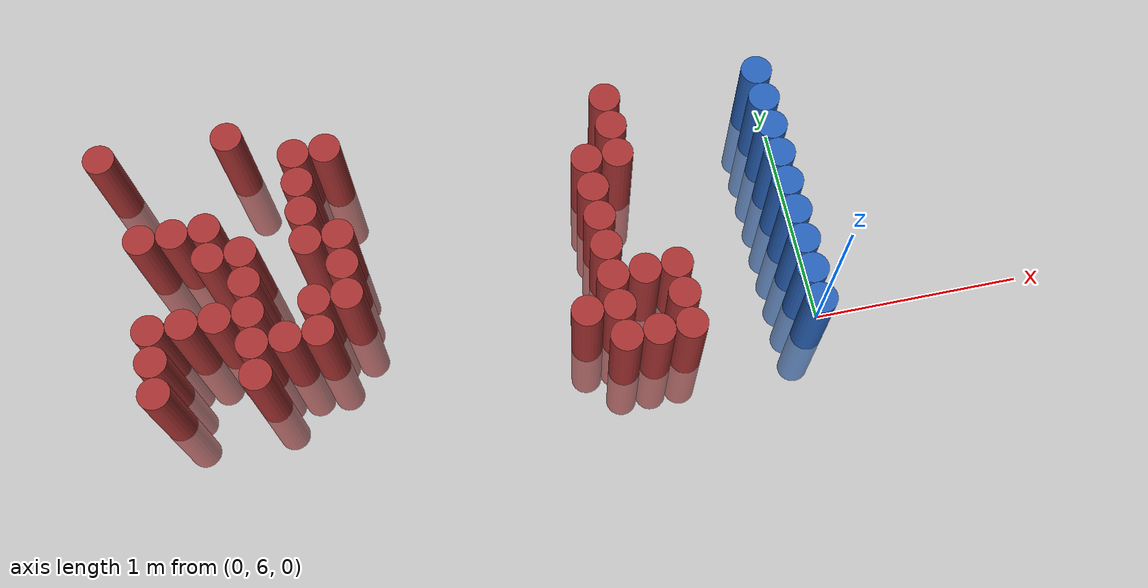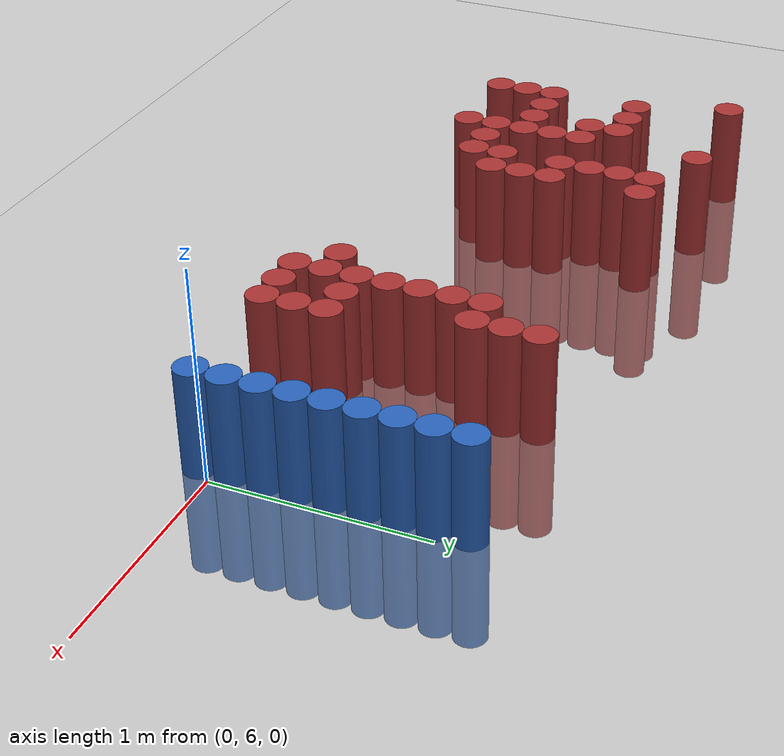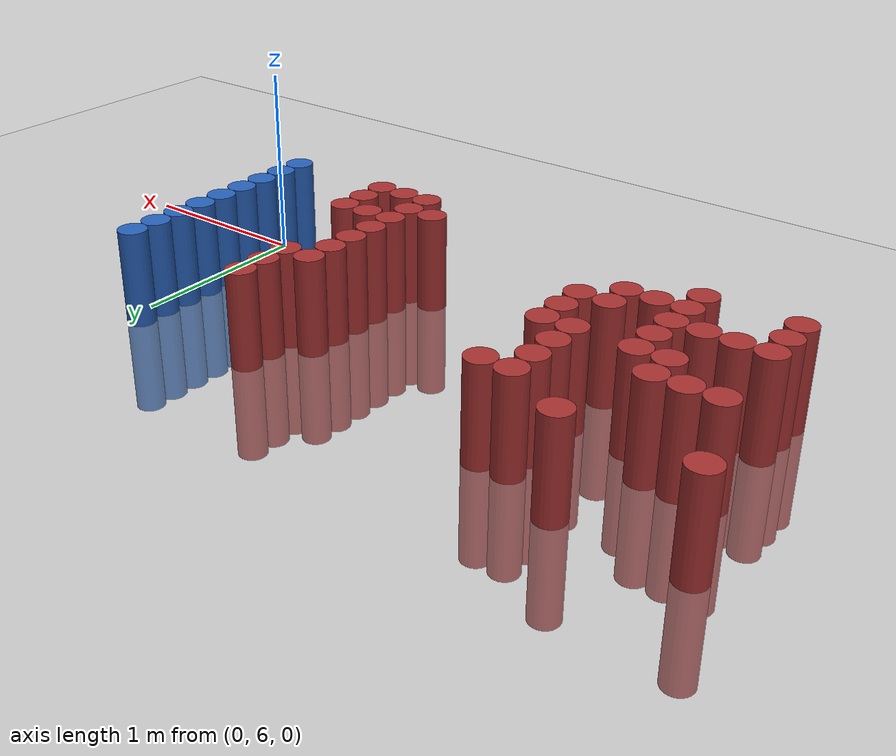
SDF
<sdf version="1.6">
 <world name="default">
  <model name="ground_plane">
   <static>1</static>
   <link name="link">
    <collision name="collision">
     <geometry><plane><normal>0 0 1</normal><size>100 100</size></plane></geometry>
     <surface><friction><ode><mu>100</mu><mu2>50</mu2></ode></friction></surface>
    </collision>
    <visual name="visual">
     <cast_shadows>0</cast_shadows>
     <geometry><plane><normal>0 0 1</normal><size>100 100</size></plane></geometry>
     <material>
      <script><uri>file://media/materials/scripts/gazebo.material</uri><name>Gazebo/Grey</name></script>
     </material>
    </visual>
   </link>
  </model>
  <model name="unit_cylinder_169">
   <static>1</static>
   <pose>-3.225000 7.275000 0.000000 0.000000 0.000000 0.000000</pose>
   <link name="link">
    <inertial>
     <mass>1</mass>
     <inertia><ixx>0.145833</ixx><ixy>0</ixy><ixz>0</ixz><iyy>0.145833</iyy><iyz>0</iyz><izz>0.125</izz></inertia>
    </inertial>
    <collision name="collision">
     <geometry><cylinder><radius>0.075000</radius><length>1</length></cylinder></geometry>
    </collision>
    <visual name="visual">
     <geometry><cylinder><radius>0.075000</radius><length>1</length></cylinder></geometry>
     <material>
      <ambient>0.648000 0.192000 0.192000 1</ambient>
      <diffuse>0.648000 0.192000 0.192000 1</diffuse>
     </material>
     <material>
      <script><name>Gazebo/Grey</name><uri>file://media/materials/scripts/gazebo.material</uri></script>
     </material>
    </visual>
   </link>
  </model>
  <model name="unit_cylinder_174">
   <static>1</static>
   <pose>-3.075000 6.075000 0.000000 0.000000 0.000000 0.000000</pose>
   <link name="link">
    <inertial>
     <mass>1</mass>
     <inertia><ixx>0.145833</ixx><ixy>0</ixy><ixz>0</ixz><iyy>0.145833</iyy><iyz>0</iyz><izz>0.125</izz></inertia>
    </inertial>
    <collision name="collision">
     <geometry><cylinder><radius>0.075000</radius><length>1</length></cylinder></geometry>
    </collision>
    <visual name="visual">
     <geometry><cylinder><radius>0.075000</radius><length>1</length></cylinder></geometry>
     <material>
      <ambient>0.648000 0.192000 0.192000 1</ambient>
      <diffuse>0.648000 0.192000 0.192000 1</diffuse>
     </material>
     <material>
      <script><name>Gazebo/Grey</name><uri>file://media/materials/scripts/gazebo.material</uri></script>
     </material>
    </visual>
   </link>
  </model>
  <model name="unit_cylinder_175">
   <static>1</static>
   <pose>-3.075000 6.225000 0.000000 0.000000 0.000000 0.000000</pose>
   <link name="link">
    <inertial>
     <mass>1</mass>
     <inertia><ixx>0.145833</ixx><ixy>0</ixy><ixz>0</ixz><iyy>0.145833</iyy><iyz>0</iyz><izz>0.125</izz></inertia>
    </inertial>
    <collision name="collision">
     <geometry><cylinder><radius>0.075000</radius><length>1</length></cylinder></geometry>
    </collision>
    <visual name="visual">
     <geometry><cylinder><radius>0.075000</radius><length>1</length></cylinder></geometry>
     <material>
      <ambient>0.648000 0.192000 0.192000 1</ambient>
      <diffuse>0.648000 0.192000 0.192000 1</diffuse>
     </material>
     <material>
      <script><name>Gazebo/Grey</name><uri>file://media/materials/scripts/gazebo.material</uri></script>
     </material>
    </visual>
   </link>
  </model>
  <model name="unit_cylinder_176">
   <static>1</static>
   <pose>-3.075000 6.375000 0.000000 0.000000 0.000000 0.000000</pose>
   <link name="link">
    <inertial>
     <mass>1</mass>
     <inertia><ixx>0.145833</ixx><ixy>0</ixy><ixz>0</ixz><iyy>0.145833</iyy><iyz>0</iyz><izz>0.125</izz></inertia>
    </inertial>
    <collision name="collision">
     <geometry><cylinder><radius>0.075000</radius><length>1</length></cylinder></geometry>
    </collision>
    <visual name="visual">
     <geometry><cylinder><radius>0.075000</radius><length>1</length></cylinder></geometry>
     <material>
      <ambient>0.648000 0.192000 0.192000 1</ambient>
      <diffuse>0.648000 0.192000 0.192000 1</diffuse>
     </material>
     <material>
      <script><name>Gazebo/Grey</name><uri>file://media/materials/scripts/gazebo.material</uri></script>
     </material>
    </visual>
   </link>
  </model>
  <model name="unit_cylinder_177">
   <static>1</static>
   <pose>-3.075000 6.825000 0.000000 0.000000 0.000000 0.000000</pose>
   <link name="link">
    <inertial>
     <mass>1</mass>
     <inertia><ixx>0.145833</ixx><ixy>0</ixy><ixz>0</ixz><iyy>0.145833</iyy><iyz>0</iyz><izz>0.125</izz></inertia>
    </inertial>
    <collision name="collision">
     <geometry><cylinder><radius>0.075000</radius><length>1</length></cylinder></geometry>
    </collision>
    <visual name="visual">
     <geometry><cylinder><radius>0.075000</radius><length>1</length></cylinder></geometry>
     <material>
      <ambient>0.648000 0.192000 0.192000 1</ambient>
      <diffuse>0.648000 0.192000 0.192000 1</diffuse>
     </material>
     <material>
      <script><name>Gazebo/Grey</name><uri>file://media/materials/scripts/gazebo.material</uri></script>
     </material>
    </visual>
   </link>
  </model>
  <model name="unit_cylinder_186">
   <static>1</static>
   <pose>-2.925000 6.375000 0.000000 0.000000 0.000000 0.000000</pose>
   <link name="link">
    <inertial>
     <mass>1</mass>
     <inertia><ixx>0.145833</ixx><ixy>0</ixy><ixz>0</ixz><iyy>0.145833</iyy><iyz>0</iyz><izz>0.125</izz></inertia>
    </inertial>
    <collision name="collision">
     <geometry><cylinder><radius>0.075000</radius><length>1</length></cylinder></geometry>
    </collision>
    <visual name="visual">
     <geometry><cylinder><radius>0.075000</radius><length>1</length></cylinder></geometry>
     <material>
      <ambient>0.648000 0.192000 0.192000 1</ambient>
      <diffuse>0.648000 0.192000 0.192000 1</diffuse>
     </material>
     <material>
      <script><name>Gazebo/Grey</name><uri>file://media/materials/scripts/gazebo.material</uri></script>
     </material>
    </visual>
   </link>
  </model>
  <model name="unit_cylinder_187">
   <static>1</static>
   <pose>-2.925000 6.825000 0.000000 0.000000 0.000000 0.000000</pose>
   <link name="link">
    <inertial>
     <mass>1</mass>
     <inertia><ixx>0.145833</ixx><ixy>0</ixy><ixz>0</ixz><iyy>0.145833</iyy><iyz>0</iyz><izz>0.125</izz></inertia>
    </inertial>
    <collision name="collision">
     <geometry><cylinder><radius>0.075000</radius><length>1</length></cylinder></geometry>
    </collision>
    <visual name="visual">
     <geometry><cylinder><radius>0.075000</radius><length>1</length></cylinder></geometry>
     <material>
      <ambient>0.648000 0.192000 0.192000 1</ambient>
      <diffuse>0.648000 0.192000 0.192000 1</diffuse>
     </material>
     <material>
      <script><name>Gazebo/Grey</name><uri>file://media/materials/scripts/gazebo.material</uri></script>
     </material>
    </visual>
   </link>
  </model>
  <model name="unit_cylinder_195">
   <static>1</static>
   <pose>-2.775000 6.375000 0.000000 0.000000 0.000000 0.000000</pose>
   <link name="link">
    <inertial>
     <mass>1</mass>
     <inertia><ixx>0.145833</ixx><ixy>0</ixy><ixz>0</ixz><iyy>0.145833</iyy><iyz>0</iyz><izz>0.125</izz></inertia>
    </inertial>
    <collision name="collision">
     <geometry><cylinder><radius>0.075000</radius><length>1</length></cylinder></geometry>
    </collision>
    <visual name="visual">
     <geometry><cylinder><radius>0.075000</radius><length>1</length></cylinder></geometry>
     <material>
      <ambient>0.648000 0.192000 0.192000 1</ambient>
      <diffuse>0.648000 0.192000 0.192000 1</diffuse>
     </material>
     <material>
      <script><name>Gazebo/Grey</name><uri>file://media/materials/scripts/gazebo.material</uri></script>
     </material>
    </visual>
   </link>
  </model>
  <model name="unit_cylinder_196">
   <static>1</static>
   <pose>-2.775000 6.675000 0.000000 0.000000 0.000000 0.000000</pose>
   <link name="link">
    <inertial>
     <mass>1</mass>
     <inertia><ixx>0.145833</ixx><ixy>0</ixy><ixz>0</ixz><iyy>0.145833</iyy><iyz>0</iyz><izz>0.125</izz></inertia>
    </inertial>
    <collision name="collision">
     <geometry><cylinder><radius>0.075000</radius><length>1</length></cylinder></geometry>
    </collision>
    <visual name="visual">
     <geometry><cylinder><radius>0.075000</radius><length>1</length></cylinder></geometry>
     <material>
      <ambient>0.648000 0.192000 0.192000 1</ambient>
      <diffuse>0.648000 0.192000 0.192000 1</diffuse>
     </material>
     <material>
      <script><name>Gazebo/Grey</name><uri>file://media/materials/scripts/gazebo.material</uri></script>
     </material>
    </visual>
   </link>
  </model>
  <model name="unit_cylinder_197">
   <static>1</static>
   <pose>-2.775000 6.825000 0.000000 0.000000 0.000000 0.000000</pose>
   <link name="link">
    <inertial>
     <mass>1</mass>
     <inertia><ixx>0.145833</ixx><ixy>0</ixy><ixz>0</ixz><iyy>0.145833</iyy><iyz>0</iyz><izz>0.125</izz></inertia>
    </inertial>
    <collision name="collision">
     <geometry><cylinder><radius>0.075000</radius><length>1</length></cylinder></geometry>
    </collision>
    <visual name="visual">
     <geometry><cylinder><radius>0.075000</radius><length>1</length></cylinder></geometry>
     <material>
      <ambient>0.648000 0.192000 0.192000 1</ambient>
      <diffuse>0.648000 0.192000 0.192000 1</diffuse>
     </material>
     <material>
      <script><name>Gazebo/Grey</name><uri>file://media/materials/scripts/gazebo.material</uri></script>
     </material>
    </visual>
   </link>
  </model>
  <model name="unit_cylinder_203">
   <static>1</static>
   <pose>-2.625000 6.075000 0.000000 0.000000 0.000000 0.000000</pose>
   <link name="link">
    <inertial>
     <mass>1</mass>
     <inertia><ixx>0.145833</ixx><ixy>0</ixy><ixz>0</ixz><iyy>0.145833</iyy><iyz>0</iyz><izz>0.125</izz></inertia>
    </inertial>
    <collision name="collision">
     <geometry><cylinder><radius>0.075000</radius><length>1</length></cylinder></geometry>
    </collision>
    <visual name="visual">
     <geometry><cylinder><radius>0.075000</radius><length>1</length></cylinder></geometry>
     <material>
      <ambient>0.648000 0.192000 0.192000 1</ambient>
      <diffuse>0.648000 0.192000 0.192000 1</diffuse>
     </material>
     <material>
      <script><name>Gazebo/Grey</name><uri>file://media/materials/scripts/gazebo.material</uri></script>
     </material>
    </visual>
   </link>
  </model>
  <model name="unit_cylinder_204">
   <static>1</static>
   <pose>-2.625000 6.225000 0.000000 0.000000 0.000000 0.000000</pose>
   <link name="link">
    <inertial>
     <mass>1</mass>
     <inertia><ixx>0.145833</ixx><ixy>0</ixy><ixz>0</ixz><iyy>0.145833</iyy><iyz>0</iyz><izz>0.125</izz></inertia>
    </inertial>
    <collision name="collision">
     <geometry><cylinder><radius>0.075000</radius><length>1</length></cylinder></geometry>
    </collision>
    <visual name="visual">
     <geometry><cylinder><radius>0.075000</radius><length>1</length></cylinder></geometry>
     <material>
      <ambient>0.648000 0.192000 0.192000 1</ambient>
      <diffuse>0.648000 0.192000 0.192000 1</diffuse>
     </material>
     <material>
      <script><name>Gazebo/Grey</name><uri>file://media/materials/scripts/gazebo.material</uri></script>
     </material>
    </visual>
   </link>
  </model>
  <model name="unit_cylinder_205">
   <static>1</static>
   <pose>-2.625000 6.375000 0.000000 0.000000 0.000000 0.000000</pose>
   <link name="link">
    <inertial>
     <mass>1</mass>
     <inertia><ixx>0.145833</ixx><ixy>0</ixy><ixz>0</ixz><iyy>0.145833</iyy><iyz>0</iyz><izz>0.125</izz></inertia>
    </inertial>
    <collision name="collision">
     <geometry><cylinder><radius>0.075000</radius><length>1</length></cylinder></geometry>
    </collision>
    <visual name="visual">
     <geometry><cylinder><radius>0.075000</radius><length>1</length></cylinder></geometry>
     <material>
      <ambient>0.648000 0.192000 0.192000 1</ambient>
      <diffuse>0.648000 0.192000 0.192000 1</diffuse>
     </material>
     <material>
      <script><name>Gazebo/Grey</name><uri>file://media/materials/scripts/gazebo.material</uri></script>
     </material>
    </visual>
   </link>
  </model>
  <model name="unit_cylinder_206">
   <static>1</static>
   <pose>-2.625000 6.525000 0.000000 0.000000 0.000000 0.000000</pose>
   <link name="link">
    <inertial>
     <mass>1</mass>
     <inertia><ixx>0.145833</ixx><ixy>0</ixy><ixz>0</ixz><iyy>0.145833</iyy><iyz>0</iyz><izz>0.125</izz></inertia>
    </inertial>
    <collision name="collision">
     <geometry><cylinder><radius>0.075000</radius><length>1</length></cylinder></geometry>
    </collision>
    <visual name="visual">
     <geometry><cylinder><radius>0.075000</radius><length>1</length></cylinder></geometry>
     <material>
      <ambient>0.648000 0.192000 0.192000 1</ambient>
      <diffuse>0.648000 0.192000 0.192000 1</diffuse>
     </material>
     <material>
      <script><name>Gazebo/Grey</name><uri>file://media/materials/scripts/gazebo.material</uri></script>
     </material>
    </visual>
   </link>
  </model>
  <model name="unit_cylinder_207">
   <static>1</static>
   <pose>-2.625000 6.675000 0.000000 0.000000 0.000000 0.000000</pose>
   <link name="link">
    <inertial>
     <mass>1</mass>
     <inertia><ixx>0.145833</ixx><ixy>0</ixy><ixz>0</ixz><iyy>0.145833</iyy><iyz>0</iyz><izz>0.125</izz></inertia>
    </inertial>
    <collision name="collision">
     <geometry><cylinder><radius>0.075000</radius><length>1</length></cylinder></geometry>
    </collision>
    <visual name="visual">
     <geometry><cylinder><radius>0.075000</radius><length>1</length></cylinder></geometry>
     <material>
      <ambient>0.648000 0.192000 0.192000 1</ambient>
      <diffuse>0.648000 0.192000 0.192000 1</diffuse>
     </material>
     <material>
      <script><name>Gazebo/Grey</name><uri>file://media/materials/scripts/gazebo.material</uri></script>
     </material>
    </visual>
   </link>
  </model>
  <model name="unit_cylinder_208">
   <static>1</static>
   <pose>-2.625000 7.275000 0.000000 0.000000 0.000000 0.000000</pose>
   <link name="link">
    <inertial>
     <mass>1</mass>
     <inertia><ixx>0.145833</ixx><ixy>0</ixy><ixz>0</ixz><iyy>0.145833</iyy><iyz>0</iyz><izz>0.125</izz></inertia>
    </inertial>
    <collision name="collision">
     <geometry><cylinder><radius>0.075000</radius><length>1</length></cylinder></geometry>
    </collision>
    <visual name="visual">
     <geometry><cylinder><radius>0.075000</radius><length>1</length></cylinder></geometry>
     <material>
      <ambient>0.648000 0.192000 0.192000 1</ambient>
      <diffuse>0.648000 0.192000 0.192000 1</diffuse>
     </material>
     <material>
      <script><name>Gazebo/Grey</name><uri>file://media/materials/scripts/gazebo.material</uri></script>
     </material>
    </visual>
   </link>
  </model>
  <model name="unit_cylinder_216">
   <static>1</static>
   <pose>-2.475000 6.225000 0.000000 0.000000 0.000000 0.000000</pose>
   <link name="link">
    <inertial>
     <mass>1</mass>
     <inertia><ixx>0.145833</ixx><ixy>0</ixy><ixz>0</ixz><iyy>0.145833</iyy><iyz>0</iyz><izz>0.125</izz></inertia>
    </inertial>
    <collision name="collision">
     <geometry><cylinder><radius>0.075000</radius><length>1</length></cylinder></geometry>
    </collision>
    <visual name="visual">
     <geometry><cylinder><radius>0.075000</radius><length>1</length></cylinder></geometry>
     <material>
      <ambient>0.648000 0.192000 0.192000 1</ambient>
      <diffuse>0.648000 0.192000 0.192000 1</diffuse>
     </material>
     <material>
      <script><name>Gazebo/Grey</name><uri>file://media/materials/scripts/gazebo.material</uri></script>
     </material>
    </visual>
   </link>
  </model>
  <model name="unit_cylinder_221">
   <static>1</static>
   <pose>-2.325000 6.225000 0.000000 0.000000 0.000000 0.000000</pose>
   <link name="link">
    <inertial>
     <mass>1</mass>
     <inertia><ixx>0.145833</ixx><ixy>0</ixy><ixz>0</ixz><iyy>0.145833</iyy><iyz>0</iyz><izz>0.125</izz></inertia>
    </inertial>
    <collision name="collision">
     <geometry><cylinder><radius>0.075000</radius><length>1</length></cylinder></geometry>
    </collision>
    <visual name="visual">
     <geometry><cylinder><radius>0.075000</radius><length>1</length></cylinder></geometry>
     <material>
      <ambient>0.648000 0.192000 0.192000 1</ambient>
      <diffuse>0.648000 0.192000 0.192000 1</diffuse>
     </material>
     <material>
      <script><name>Gazebo/Grey</name><uri>file://media/materials/scripts/gazebo.material</uri></script>
     </material>
    </visual>
   </link>
  </model>
  <model name="unit_cylinder_222">
   <static>1</static>
   <pose>-2.325000 6.375000 0.000000 0.000000 0.000000 0.000000</pose>
   <link name="link">
    <inertial>
     <mass>1</mass>
     <inertia><ixx>0.145833</ixx><ixy>0</ixy><ixz>0</ixz><iyy>0.145833</iyy><iyz>0</iyz><izz>0.125</izz></inertia>
    </inertial>
    <collision name="collision">
     <geometry><cylinder><radius>0.075000</radius><length>1</length></cylinder></geometry>
    </collision>
    <visual name="visual">
     <geometry><cylinder><radius>0.075000</radius><length>1</length></cylinder></geometry>
     <material>
      <ambient>0.648000 0.192000 0.192000 1</ambient>
      <diffuse>0.648000 0.192000 0.192000 1</diffuse>
     </material>
     <material>
      <script><name>Gazebo/Grey</name><uri>file://media/materials/scripts/gazebo.material</uri></script>
     </material>
    </visual>
   </link>
  </model>
  <model name="unit_cylinder_223">
   <static>1</static>
   <pose>-2.325000 6.675000 0.000000 0.000000 0.000000 0.000000</pose>
   <link name="link">
    <inertial>
     <mass>1</mass>
     <inertia><ixx>0.145833</ixx><ixy>0</ixy><ixz>0</ixz><iyy>0.145833</iyy><iyz>0</iyz><izz>0.125</izz></inertia>
    </inertial>
    <collision name="collision">
     <geometry><cylinder><radius>0.075000</radius><length>1</length></cylinder></geometry>
    </collision>
    <visual name="visual">
     <geometry><cylinder><radius>0.075000</radius><length>1</length></cylinder></geometry>
     <material>
      <ambient>0.648000 0.192000 0.192000 1</ambient>
      <diffuse>0.648000 0.192000 0.192000 1</diffuse>
     </material>
     <material>
      <script><name>Gazebo/Grey</name><uri>file://media/materials/scripts/gazebo.material</uri></script>
     </material>
    </visual>
   </link>
  </model>
  <model name="unit_cylinder_224">
   <static>1</static>
   <pose>-2.325000 6.825000 0.000000 0.000000 0.000000 0.000000</pose>
   <link name="link">
    <inertial>
     <mass>1</mass>
     <inertia><ixx>0.145833</ixx><ixy>0</ixy><ixz>0</ixz><iyy>0.145833</iyy><iyz>0</iyz><izz>0.125</izz></inertia>
    </inertial>
    <collision name="collision">
     <geometry><cylinder><radius>0.075000</radius><length>1</length></cylinder></geometry>
    </collision>
    <visual name="visual">
     <geometry><cylinder><radius>0.075000</radius><length>1</length></cylinder></geometry>
     <material>
      <ambient>0.648000 0.192000 0.192000 1</ambient>
      <diffuse>0.648000 0.192000 0.192000 1</diffuse>
     </material>
     <material>
      <script><name>Gazebo/Grey</name><uri>file://media/materials/scripts/gazebo.material</uri></script>
     </material>
    </visual>
   </link>
  </model>
  <model name="unit_cylinder_225">
   <static>1</static>
   <pose>-2.325000 6.975000 0.000000 0.000000 0.000000 0.000000</pose>
   <link name="link">
    <inertial>
     <mass>1</mass>
     <inertia><ixx>0.145833</ixx><ixy>0</ixy><ixz>0</ixz><iyy>0.145833</iyy><iyz>0</iyz><izz>0.125</izz></inertia>
    </inertial>
    <collision name="collision">
     <geometry><cylinder><radius>0.075000</radius><length>1</length></cylinder></geometry>
    </collision>
    <visual name="visual">
     <geometry><cylinder><radius>0.075000</radius><length>1</length></cylinder></geometry>
     <material>
      <ambient>0.648000 0.192000 0.192000 1</ambient>
      <diffuse>0.648000 0.192000 0.192000 1</diffuse>
     </material>
     <material>
      <script><name>Gazebo/Grey</name><uri>file://media/materials/scripts/gazebo.material</uri></script>
     </material>
    </visual>
   </link>
  </model>
  <model name="unit_cylinder_226">
   <static>1</static>
   <pose>-2.325000 7.125000 0.000000 0.000000 0.000000 0.000000</pose>
   <link name="link">
    <inertial>
     <mass>1</mass>
     <inertia><ixx>0.145833</ixx><ixy>0</ixy><ixz>0</ixz><iyy>0.145833</iyy><iyz>0</iyz><izz>0.125</izz></inertia>
    </inertial>
    <collision name="collision">
     <geometry><cylinder><radius>0.075000</radius><length>1</length></cylinder></geometry>
    </collision>
    <visual name="visual">
     <geometry><cylinder><radius>0.075000</radius><length>1</length></cylinder></geometry>
     <material>
      <ambient>0.648000 0.192000 0.192000 1</ambient>
      <diffuse>0.648000 0.192000 0.192000 1</diffuse>
     </material>
     <material>
      <script><name>Gazebo/Grey</name><uri>file://media/materials/scripts/gazebo.material</uri></script>
     </material>
    </visual>
   </link>
  </model>
  <model name="unit_cylinder_230">
   <static>1</static>
   <pose>-2.175000 6.375000 0.000000 0.000000 0.000000 0.000000</pose>
   <link name="link">
    <inertial>
     <mass>1</mass>
     <inertia><ixx>0.145833</ixx><ixy>0</ixy><ixz>0</ixz><iyy>0.145833</iyy><iyz>0</iyz><izz>0.125</izz></inertia>
    </inertial>
    <collision name="collision">
     <geometry><cylinder><radius>0.075000</radius><length>1</length></cylinder></geometry>
    </collision>
    <visual name="visual">
     <geometry><cylinder><radius>0.075000</radius><length>1</length></cylinder></geometry>
     <material>
      <ambient>0.648000 0.192000 0.192000 1</ambient>
      <diffuse>0.648000 0.192000 0.192000 1</diffuse>
     </material>
     <material>
      <script><name>Gazebo/Grey</name><uri>file://media/materials/scripts/gazebo.material</uri></script>
     </material>
    </visual>
   </link>
  </model>
  <model name="unit_cylinder_231">
   <static>1</static>
   <pose>-2.175000 6.525000 0.000000 0.000000 0.000000 0.000000</pose>
   <link name="link">
    <inertial>
     <mass>1</mass>
     <inertia><ixx>0.145833</ixx><ixy>0</ixy><ixz>0</ixz><iyy>0.145833</iyy><iyz>0</iyz><izz>0.125</izz></inertia>
    </inertial>
    <collision name="collision">
     <geometry><cylinder><radius>0.075000</radius><length>1</length></cylinder></geometry>
    </collision>
    <visual name="visual">
     <geometry><cylinder><radius>0.075000</radius><length>1</length></cylinder></geometry>
     <material>
      <ambient>0.648000 0.192000 0.192000 1</ambient>
      <diffuse>0.648000 0.192000 0.192000 1</diffuse>
     </material>
     <material>
      <script><name>Gazebo/Grey</name><uri>file://media/materials/scripts/gazebo.material</uri></script>
     </material>
    </visual>
   </link>
  </model>
  <model name="unit_cylinder_232">
   <static>1</static>
   <pose>-2.175000 6.675000 0.000000 0.000000 0.000000 0.000000</pose>
   <link name="link">
    <inertial>
     <mass>1</mass>
     <inertia><ixx>0.145833</ixx><ixy>0</ixy><ixz>0</ixz><iyy>0.145833</iyy><iyz>0</iyz><izz>0.125</izz></inertia>
    </inertial>
    <collision name="collision">
     <geometry><cylinder><radius>0.075000</radius><length>1</length></cylinder></geometry>
    </collision>
    <visual name="visual">
     <geometry><cylinder><radius>0.075000</radius><length>1</length></cylinder></geometry>
     <material>
      <ambient>0.648000 0.192000 0.192000 1</ambient>
      <diffuse>0.648000 0.192000 0.192000 1</diffuse>
     </material>
     <material>
      <script><name>Gazebo/Grey</name><uri>file://media/materials/scripts/gazebo.material</uri></script>
     </material>
    </visual>
   </link>
  </model>
  <model name="unit_cylinder_233">
   <static>1</static>
   <pose>-2.175000 7.125000 0.000000 0.000000 0.000000 0.000000</pose>
   <link name="link">
    <inertial>
     <mass>1</mass>
     <inertia><ixx>0.145833</ixx><ixy>0</ixy><ixz>0</ixz><iyy>0.145833</iyy><iyz>0</iyz><izz>0.125</izz></inertia>
    </inertial>
    <collision name="collision">
     <geometry><cylinder><radius>0.075000</radius><length>1</length></cylinder></geometry>
    </collision>
    <visual name="visual">
     <geometry><cylinder><radius>0.075000</radius><length>1</length></cylinder></geometry>
     <material>
      <ambient>0.648000 0.192000 0.192000 1</ambient>
      <diffuse>0.648000 0.192000 0.192000 1</diffuse>
     </material>
     <material>
      <script><name>Gazebo/Grey</name><uri>file://media/materials/scripts/gazebo.material</uri></script>
     </material>
    </visual>
   </link>
  </model>
  <model name="unit_cylinder_243">
   <static>1</static>
   <pose>-1.125000 6.075000 0.000000 0.000000 0.000000 0.000000</pose>
   <link name="link">
    <inertial>
     <mass>1</mass>
     <inertia><ixx>0.145833</ixx><ixy>0</ixy><ixz>0</ixz><iyy>0.145833</iyy><iyz>0</iyz><izz>0.125</izz></inertia>
    </inertial>
    <collision name="collision">
     <geometry><cylinder><radius>0.075000</radius><length>1</length></cylinder></geometry>
    </collision>
    <visual name="visual">
     <geometry><cylinder><radius>0.075000</radius><length>1</length></cylinder></geometry>
     <material>
      <ambient>0.648000 0.192000 0.192000 1</ambient>
      <diffuse>0.648000 0.192000 0.192000 1</diffuse>
     </material>
     <material>
      <script><name>Gazebo/Grey</name><uri>file://media/materials/scripts/gazebo.material</uri></script>
     </material>
    </visual>
   </link>
  </model>
  <model name="unit_cylinder_246">
   <static>1</static>
   <pose>-0.975000 5.925000 0.000000 0.000000 0.000000 0.000000</pose>
   <link name="link">
    <inertial>
     <mass>1</mass>
     <inertia><ixx>0.145833</ixx><ixy>0</ixy><ixz>0</ixz><iyy>0.145833</iyy><iyz>0</iyz><izz>0.125</izz></inertia>
    </inertial>
    <collision name="collision">
     <geometry><cylinder><radius>0.075000</radius><length>1</length></cylinder></geometry>
    </collision>
    <visual name="visual">
     <geometry><cylinder><radius>0.075000</radius><length>1</length></cylinder></geometry>
     <material>
      <ambient>0.648000 0.192000 0.192000 1</ambient>
      <diffuse>0.648000 0.192000 0.192000 1</diffuse>
     </material>
     <material>
      <script><name>Gazebo/Grey</name><uri>file://media/materials/scripts/gazebo.material</uri></script>
     </material>
    </visual>
   </link>
  </model>
  <model name="unit_cylinder_247">
   <static>1</static>
   <pose>-0.975000 6.075000 0.000000 0.000000 0.000000 0.000000</pose>
   <link name="link">
    <inertial>
     <mass>1</mass>
     <inertia><ixx>0.145833</ixx><ixy>0</ixy><ixz>0</ixz><iyy>0.145833</iyy><iyz>0</iyz><izz>0.125</izz></inertia>
    </inertial>
    <collision name="collision">
     <geometry><cylinder><radius>0.075000</radius><length>1</length></cylinder></geometry>
    </collision>
    <visual name="visual">
     <geometry><cylinder><radius>0.075000</radius><length>1</length></cylinder></geometry>
     <material>
      <ambient>0.648000 0.192000 0.192000 1</ambient>
      <diffuse>0.648000 0.192000 0.192000 1</diffuse>
     </material>
     <material>
      <script><name>Gazebo/Grey</name><uri>file://media/materials/scripts/gazebo.material</uri></script>
     </material>
    </visual>
   </link>
  </model>
  <model name="unit_cylinder_248">
   <static>1</static>
   <pose>-0.975000 6.225000 0.000000 0.000000 0.000000 0.000000</pose>
   <link name="link">
    <inertial>
     <mass>1</mass>
     <inertia><ixx>0.145833</ixx><ixy>0</ixy><ixz>0</ixz><iyy>0.145833</iyy><iyz>0</iyz><izz>0.125</izz></inertia>
    </inertial>
    <collision name="collision">
     <geometry><cylinder><radius>0.075000</radius><length>1</length></cylinder></geometry>
    </collision>
    <visual name="visual">
     <geometry><cylinder><radius>0.075000</radius><length>1</length></cylinder></geometry>
     <material>
      <ambient>0.648000 0.192000 0.192000 1</ambient>
      <diffuse>0.648000 0.192000 0.192000 1</diffuse>
     </material>
     <material>
      <script><name>Gazebo/Grey</name><uri>file://media/materials/scripts/gazebo.material</uri></script>
     </material>
    </visual>
   </link>
  </model>
  <model name="unit_cylinder_249">
   <static>1</static>
   <pose>-0.975000 6.375000 0.000000 0.000000 0.000000 0.000000</pose>
   <link name="link">
    <inertial>
     <mass>1</mass>
     <inertia><ixx>0.145833</ixx><ixy>0</ixy><ixz>0</ixz><iyy>0.145833</iyy><iyz>0</iyz><izz>0.125</izz></inertia>
    </inertial>
    <collision name="collision">
     <geometry><cylinder><radius>0.075000</radius><length>1</length></cylinder></geometry>
    </collision>
    <visual name="visual">
     <geometry><cylinder><radius>0.075000</radius><length>1</length></cylinder></geometry>
     <material>
      <ambient>0.648000 0.192000 0.192000 1</ambient>
      <diffuse>0.648000 0.192000 0.192000 1</diffuse>
     </material>
     <material>
      <script><name>Gazebo/Grey</name><uri>file://media/materials/scripts/gazebo.material</uri></script>
     </material>
    </visual>
   </link>
  </model>
  <model name="unit_cylinder_250">
   <static>1</static>
   <pose>-0.975000 6.525000 0.000000 0.000000 0.000000 0.000000</pose>
   <link name="link">
    <inertial>
     <mass>1</mass>
     <inertia><ixx>0.145833</ixx><ixy>0</ixy><ixz>0</ixz><iyy>0.145833</iyy><iyz>0</iyz><izz>0.125</izz></inertia>
    </inertial>
    <collision name="collision">
     <geometry><cylinder><radius>0.075000</radius><length>1</length></cylinder></geometry>
    </collision>
    <visual name="visual">
     <geometry><cylinder><radius>0.075000</radius><length>1</length></cylinder></geometry>
     <material>
      <ambient>0.648000 0.192000 0.192000 1</ambient>
      <diffuse>0.648000 0.192000 0.192000 1</diffuse>
     </material>
     <material>
      <script><name>Gazebo/Grey</name><uri>file://media/materials/scripts/gazebo.material</uri></script>
     </material>
    </visual>
   </link>
  </model>
  <model name="unit_cylinder_251">
   <static>1</static>
   <pose>-0.975000 6.675000 0.000000 0.000000 0.000000 0.000000</pose>
   <link name="link">
    <inertial>
     <mass>1</mass>
     <inertia><ixx>0.145833</ixx><ixy>0</ixy><ixz>0</ixz><iyy>0.145833</iyy><iyz>0</iyz><izz>0.125</izz></inertia>
    </inertial>
    <collision name="collision">
     <geometry><cylinder><radius>0.075000</radius><length>1</length></cylinder></geometry>
    </collision>
    <visual name="visual">
     <geometry><cylinder><radius>0.075000</radius><length>1</length></cylinder></geometry>
     <material>
      <ambient>0.648000 0.192000 0.192000 1</ambient>
      <diffuse>0.648000 0.192000 0.192000 1</diffuse>
     </material>
     <material>
      <script><name>Gazebo/Grey</name><uri>file://media/materials/scripts/gazebo.material</uri></script>
     </material>
    </visual>
   </link>
  </model>
  <model name="unit_cylinder_252">
   <static>1</static>
   <pose>-0.975000 6.825000 0.000000 0.000000 0.000000 0.000000</pose>
   <link name="link">
    <inertial>
     <mass>1</mass>
     <inertia><ixx>0.145833</ixx><ixy>0</ixy><ixz>0</ixz><iyy>0.145833</iyy><iyz>0</iyz><izz>0.125</izz></inertia>
    </inertial>
    <collision name="collision">
     <geometry><cylinder><radius>0.075000</radius><length>1</length></cylinder></geometry>
    </collision>
    <visual name="visual">
     <geometry><cylinder><radius>0.075000</radius><length>1</length></cylinder></geometry>
     <material>
      <ambient>0.648000 0.192000 0.192000 1</ambient>
      <diffuse>0.648000 0.192000 0.192000 1</diffuse>
     </material>
     <material>
      <script><name>Gazebo/Grey</name><uri>file://media/materials/scripts/gazebo.material</uri></script>
     </material>
    </visual>
   </link>
  </model>
  <model name="unit_cylinder_256">
   <static>1</static>
   <pose>-0.825000 5.925000 0.000000 0.000000 0.000000 0.000000</pose>
   <link name="link">
    <inertial>
     <mass>1</mass>
     <inertia><ixx>0.145833</ixx><ixy>0</ixy><ixz>0</ixz><iyy>0.145833</iyy><iyz>0</iyz><izz>0.125</izz></inertia>
    </inertial>
    <collision name="collision">
     <geometry><cylinder><radius>0.075000</radius><length>1</length></cylinder></geometry>
    </collision>
    <visual name="visual">
     <geometry><cylinder><radius>0.075000</radius><length>1</length></cylinder></geometry>
     <material>
      <ambient>0.648000 0.192000 0.192000 1</ambient>
      <diffuse>0.648000 0.192000 0.192000 1</diffuse>
     </material>
     <material>
      <script><name>Gazebo/Grey</name><uri>file://media/materials/scripts/gazebo.material</uri></script>
     </material>
    </visual>
   </link>
  </model>
  <model name="unit_cylinder_257">
   <static>1</static>
   <pose>-0.825000 6.225000 0.000000 0.000000 0.000000 0.000000</pose>
   <link name="link">
    <inertial>
     <mass>1</mass>
     <inertia><ixx>0.145833</ixx><ixy>0</ixy><ixz>0</ixz><iyy>0.145833</iyy><iyz>0</iyz><izz>0.125</izz></inertia>
    </inertial>
    <collision name="collision">
     <geometry><cylinder><radius>0.075000</radius><length>1</length></cylinder></geometry>
    </collision>
    <visual name="visual">
     <geometry><cylinder><radius>0.075000</radius><length>1</length></cylinder></geometry>
     <material>
      <ambient>0.648000 0.192000 0.192000 1</ambient>
      <diffuse>0.648000 0.192000 0.192000 1</diffuse>
     </material>
     <material>
      <script><name>Gazebo/Grey</name><uri>file://media/materials/scripts/gazebo.material</uri></script>
     </material>
    </visual>
   </link>
  </model>
  <model name="unit_cylinder_258">
   <static>1</static>
   <pose>-0.825000 6.825000 0.000000 0.000000 0.000000 0.000000</pose>
   <link name="link">
    <inertial>
     <mass>1</mass>
     <inertia><ixx>0.145833</ixx><ixy>0</ixy><ixz>0</ixz><iyy>0.145833</iyy><iyz>0</iyz><izz>0.125</izz></inertia>
    </inertial>
    <collision name="collision">
     <geometry><cylinder><radius>0.075000</radius><length>1</length></cylinder></geometry>
    </collision>
    <visual name="visual">
     <geometry><cylinder><radius>0.075000</radius><length>1</length></cylinder></geometry>
     <material>
      <ambient>0.648000 0.192000 0.192000 1</ambient>
      <diffuse>0.648000 0.192000 0.192000 1</diffuse>
     </material>
     <material>
      <script><name>Gazebo/Grey</name><uri>file://media/materials/scripts/gazebo.material</uri></script>
     </material>
    </visual>
   </link>
  </model>
  <model name="unit_cylinder_259">
   <static>1</static>
   <pose>-0.825000 6.975000 0.000000 0.000000 0.000000 0.000000</pose>
   <link name="link">
    <inertial>
     <mass>1</mass>
     <inertia><ixx>0.145833</ixx><ixy>0</ixy><ixz>0</ixz><iyy>0.145833</iyy><iyz>0</iyz><izz>0.125</izz></inertia>
    </inertial>
    <collision name="collision">
     <geometry><cylinder><radius>0.075000</radius><length>1</length></cylinder></geometry>
    </collision>
    <visual name="visual">
     <geometry><cylinder><radius>0.075000</radius><length>1</length></cylinder></geometry>
     <material>
      <ambient>0.648000 0.192000 0.192000 1</ambient>
      <diffuse>0.648000 0.192000 0.192000 1</diffuse>
     </material>
     <material>
      <script><name>Gazebo/Grey</name><uri>file://media/materials/scripts/gazebo.material</uri></script>
     </material>
    </visual>
   </link>
  </model>
  <model name="unit_cylinder_260">
   <static>1</static>
   <pose>-0.825000 7.125000 0.000000 0.000000 0.000000 0.000000</pose>
   <link name="link">
    <inertial>
     <mass>1</mass>
     <inertia><ixx>0.145833</ixx><ixy>0</ixy><ixz>0</ixz><iyy>0.145833</iyy><iyz>0</iyz><izz>0.125</izz></inertia>
    </inertial>
    <collision name="collision">
     <geometry><cylinder><radius>0.075000</radius><length>1</length></cylinder></geometry>
    </collision>
    <visual name="visual">
     <geometry><cylinder><radius>0.075000</radius><length>1</length></cylinder></geometry>
     <material>
      <ambient>0.648000 0.192000 0.192000 1</ambient>
      <diffuse>0.648000 0.192000 0.192000 1</diffuse>
     </material>
     <material>
      <script><name>Gazebo/Grey</name><uri>file://media/materials/scripts/gazebo.material</uri></script>
     </material>
    </visual>
   </link>
  </model>
  <model name="unit_cylinder_267">
   <static>1</static>
   <pose>-0.675000 5.925000 0.000000 0.000000 0.000000 0.000000</pose>
   <link name="link">
    <inertial>
     <mass>1</mass>
     <inertia><ixx>0.145833</ixx><ixy>0</ixy><ixz>0</ixz><iyy>0.145833</iyy><iyz>0</iyz><izz>0.125</izz></inertia>
    </inertial>
    <collision name="collision">
     <geometry><cylinder><radius>0.075000</radius><length>1</length></cylinder></geometry>
    </collision>
    <visual name="visual">
     <geometry><cylinder><radius>0.075000</radius><length>1</length></cylinder></geometry>
     <material>
      <ambient>0.648000 0.192000 0.192000 1</ambient>
      <diffuse>0.648000 0.192000 0.192000 1</diffuse>
     </material>
     <material>
      <script><name>Gazebo/Grey</name><uri>file://media/materials/scripts/gazebo.material</uri></script>
     </material>
    </visual>
   </link>
  </model>
  <model name="unit_cylinder_268">
   <static>1</static>
   <pose>-0.675000 6.075000 0.000000 0.000000 0.000000 0.000000</pose>
   <link name="link">
    <inertial>
     <mass>1</mass>
     <inertia><ixx>0.145833</ixx><ixy>0</ixy><ixz>0</ixz><iyy>0.145833</iyy><iyz>0</iyz><izz>0.125</izz></inertia>
    </inertial>
    <collision name="collision">
     <geometry><cylinder><radius>0.075000</radius><length>1</length></cylinder></geometry>
    </collision>
    <visual name="visual">
     <geometry><cylinder><radius>0.075000</radius><length>1</length></cylinder></geometry>
     <material>
      <ambient>0.648000 0.192000 0.192000 1</ambient>
      <diffuse>0.648000 0.192000 0.192000 1</diffuse>
     </material>
     <material>
      <script><name>Gazebo/Grey</name><uri>file://media/materials/scripts/gazebo.material</uri></script>
     </material>
    </visual>
   </link>
  </model>
  <model name="unit_cylinder_269">
   <static>1</static>
   <pose>-0.675000 6.225000 0.000000 0.000000 0.000000 0.000000</pose>
   <link name="link">
    <inertial>
     <mass>1</mass>
     <inertia><ixx>0.145833</ixx><ixy>0</ixy><ixz>0</ixz><iyy>0.145833</iyy><iyz>0</iyz><izz>0.125</izz></inertia>
    </inertial>
    <collision name="collision">
     <geometry><cylinder><radius>0.075000</radius><length>1</length></cylinder></geometry>
    </collision>
    <visual name="visual">
     <geometry><cylinder><radius>0.075000</radius><length>1</length></cylinder></geometry>
     <material>
      <ambient>0.648000 0.192000 0.192000 1</ambient>
      <diffuse>0.648000 0.192000 0.192000 1</diffuse>
     </material>
     <material>
      <script><name>Gazebo/Grey</name><uri>file://media/materials/scripts/gazebo.material</uri></script>
     </material>
    </visual>
   </link>
  </model>
  <model name="unit_cylinder_289">
   <static>1</static>
   <pose>-0.075000 5.925000 0.000000 0.000000 0.000000 0.000000</pose>
   <link name="link">
    <inertial>
     <mass>1</mass>
     <inertia><ixx>0.145833</ixx><ixy>0</ixy><ixz>0</ixz><iyy>0.145833</iyy><iyz>0</iyz><izz>0.125</izz></inertia>
    </inertial>
    <collision name="collision">
     <geometry><cylinder><radius>0.075000</radius><length>1</length></cylinder></geometry>
    </collision>
    <visual name="visual">
     <geometry><cylinder><radius>0.075000</radius><length>1</length></cylinder></geometry>
     <material>
      <ambient>0.152000 0.379000 0.720000 1</ambient>
      <diffuse>0.152000 0.379000 0.720000 1</diffuse>
     </material>
     <material>
      <script><name>Gazebo/Grey</name><uri>file://media/materials/scripts/gazebo.material</uri></script>
     </material>
    </visual>
   </link>
  </model>
  <model name="unit_cylinder_290">
   <static>1</static>
   <pose>-0.075000 6.075000 0.000000 0.000000 0.000000 0.000000</pose>
   <link name="link">
    <inertial>
     <mass>1</mass>
     <inertia><ixx>0.145833</ixx><ixy>0</ixy><ixz>0</ixz><iyy>0.145833</iyy><iyz>0</iyz><izz>0.125</izz></inertia>
    </inertial>
    <collision name="collision">
     <geometry><cylinder><radius>0.075000</radius><length>1</length></cylinder></geometry>
    </collision>
    <visual name="visual">
     <geometry><cylinder><radius>0.075000</radius><length>1</length></cylinder></geometry>
     <material>
      <ambient>0.152000 0.379000 0.720000 1</ambient>
      <diffuse>0.152000 0.379000 0.720000 1</diffuse>
     </material>
     <material>
      <script><name>Gazebo/Grey</name><uri>file://media/materials/scripts/gazebo.material</uri></script>
     </material>
    </visual>
   </link>
  </model>
  <model name="unit_cylinder_291">
   <static>1</static>
   <pose>-0.075000 6.225000 0.000000 0.000000 0.000000 0.000000</pose>
   <link name="link">
    <inertial>
     <mass>1</mass>
     <inertia><ixx>0.145833</ixx><ixy>0</ixy><ixz>0</ixz><iyy>0.145833</iyy><iyz>0</iyz><izz>0.125</izz></inertia>
    </inertial>
    <collision name="collision">
     <geometry><cylinder><radius>0.075000</radius><length>1</length></cylinder></geometry>
    </collision>
    <visual name="visual">
     <geometry><cylinder><radius>0.075000</radius><length>1</length></cylinder></geometry>
     <material>
      <ambient>0.152000 0.379000 0.720000 1</ambient>
      <diffuse>0.152000 0.379000 0.720000 1</diffuse>
     </material>
     <material>
      <script><name>Gazebo/Grey</name><uri>file://media/materials/scripts/gazebo.material</uri></script>
     </material>
    </visual>
   </link>
  </model>
  <model name="unit_cylinder_292">
   <static>1</static>
   <pose>-0.075000 6.375000 0.000000 0.000000 0.000000 0.000000</pose>
   <link name="link">
    <inertial>
     <mass>1</mass>
     <inertia><ixx>0.145833</ixx><ixy>0</ixy><ixz>0</ixz><iyy>0.145833</iyy><iyz>0</iyz><izz>0.125</izz></inertia>
    </inertial>
    <collision name="collision">
     <geometry><cylinder><radius>0.075000</radius><length>1</length></cylinder></geometry>
    </collision>
    <visual name="visual">
     <geometry><cylinder><radius>0.075000</radius><length>1</length></cylinder></geometry>
     <material>
      <ambient>0.152000 0.379000 0.720000 1</ambient>
      <diffuse>0.152000 0.379000 0.720000 1</diffuse>
     </material>
     <material>
      <script><name>Gazebo/Grey</name><uri>file://media/materials/scripts/gazebo.material</uri></script>
     </material>
    </visual>
   </link>
  </model>
  <model name="unit_cylinder_293">
   <static>1</static>
   <pose>-0.075000 6.525000 0.000000 0.000000 0.000000 0.000000</pose>
   <link name="link">
    <inertial>
     <mass>1</mass>
     <inertia><ixx>0.145833</ixx><ixy>0</ixy><ixz>0</ixz><iyy>0.145833</iyy><iyz>0</iyz><izz>0.125</izz></inertia>
    </inertial>
    <collision name="collision">
     <geometry><cylinder><radius>0.075000</radius><length>1</length></cylinder></geometry>
    </collision>
    <visual name="visual">
     <geometry><cylinder><radius>0.075000</radius><length>1</length></cylinder></geometry>
     <material>
      <ambient>0.152000 0.379000 0.720000 1</ambient>
      <diffuse>0.152000 0.379000 0.720000 1</diffuse>
     </material>
     <material>
      <script><name>Gazebo/Grey</name><uri>file://media/materials/scripts/gazebo.material</uri></script>
     </material>
    </visual>
   </link>
  </model>
  <model name="unit_cylinder_294">
   <static>1</static>
   <pose>-0.075000 6.675000 0.000000 0.000000 0.000000 0.000000</pose>
   <link name="link">
    <inertial>
     <mass>1</mass>
     <inertia><ixx>0.145833</ixx><ixy>0</ixy><ixz>0</ixz><iyy>0.145833</iyy><iyz>0</iyz><izz>0.125</izz></inertia>
    </inertial>
    <collision name="collision">
     <geometry><cylinder><radius>0.075000</radius><length>1</length></cylinder></geometry>
    </collision>
    <visual name="visual">
     <geometry><cylinder><radius>0.075000</radius><length>1</length></cylinder></geometry>
     <material>
      <ambient>0.152000 0.379000 0.720000 1</ambient>
      <diffuse>0.152000 0.379000 0.720000 1</diffuse>
     </material>
     <material>
      <script><name>Gazebo/Grey</name><uri>file://media/materials/scripts/gazebo.material</uri></script>
     </material>
    </visual>
   </link>
  </model>
  <model name="unit_cylinder_295">
   <static>1</static>
   <pose>-0.075000 6.825000 0.000000 0.000000 0.000000 0.000000</pose>
   <link name="link">
    <inertial>
     <mass>1</mass>
     <inertia><ixx>0.145833</ixx><ixy>0</ixy><ixz>0</ixz><iyy>0.145833</iyy><iyz>0</iyz><izz>0.125</izz></inertia>
    </inertial>
    <collision name="collision">
     <geometry><cylinder><radius>0.075000</radius><length>1</length></cylinder></geometry>
    </collision>
    <visual name="visual">
     <geometry><cylinder><radius>0.075000</radius><length>1</length></cylinder></geometry>
     <material>
      <ambient>0.152000 0.379000 0.720000 1</ambient>
      <diffuse>0.152000 0.379000 0.720000 1</diffuse>
     </material>
     <material>
      <script><name>Gazebo/Grey</name><uri>file://media/materials/scripts/gazebo.material</uri></script>
     </material>
    </visual>
   </link>
  </model>
  <model name="unit_cylinder_296">
   <static>1</static>
   <pose>-0.075000 6.975000 0.000000 0.000000 0.000000 0.000000</pose>
   <link name="link">
    <inertial>
     <mass>1</mass>
     <inertia><ixx>0.145833</ixx><ixy>0</ixy><ixz>0</ixz><iyy>0.145833</iyy><iyz>0</iyz><izz>0.125</izz></inertia>
    </inertial>
    <collision name="collision">
     <geometry><cylinder><radius>0.075000</radius><length>1</length></cylinder></geometry>
    </collision>
    <visual name="visual">
     <geometry><cylinder><radius>0.075000</radius><length>1</length></cylinder></geometry>
     <material>
      <ambient>0.152000 0.379000 0.720000 1</ambient>
      <diffuse>0.152000 0.379000 0.720000 1</diffuse>
     </material>
     <material>
      <script><name>Gazebo/Grey</name><uri>file://media/materials/scripts/gazebo.material</uri></script>
     </material>
    </visual>
   </link>
  </model>
  <model name="unit_cylinder_297">
   <static>1</static>
   <pose>-0.075000 7.125000 0.000000 0.000000 0.000000 0.000000</pose>
   <link name="link">
    <inertial>
     <mass>1</mass>
     <inertia><ixx>0.145833</ixx><ixy>0</ixy><ixz>0</ixz><iyy>0.145833</iyy><iyz>0</iyz><izz>0.125</izz></inertia>
    </inertial>
    <collision name="collision">
     <geometry><cylinder><radius>0.075000</radius><length>1</length></cylinder></geometry>
    </collision>
    <visual name="visual">
     <geometry><cylinder><radius>0.075000</radius><length>1</length></cylinder></geometry>
     <material>
      <ambient>0.152000 0.379000 0.720000 1</ambient>
      <diffuse>0.152000 0.379000 0.720000 1</diffuse>
     </material>
     <material>
      <script><name>Gazebo/Grey</name><uri>file://media/materials/scripts/gazebo.material</uri></script>
     </material>
    </visual>
   </link>
  </model>
 </world>
</sdf>
